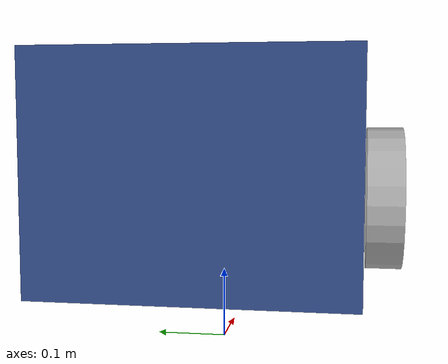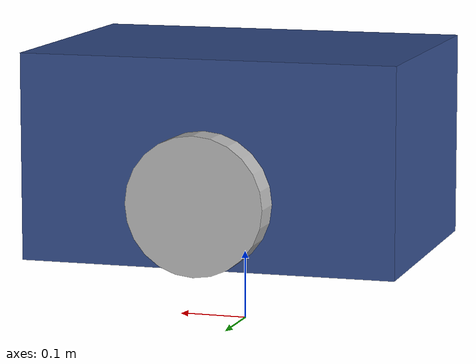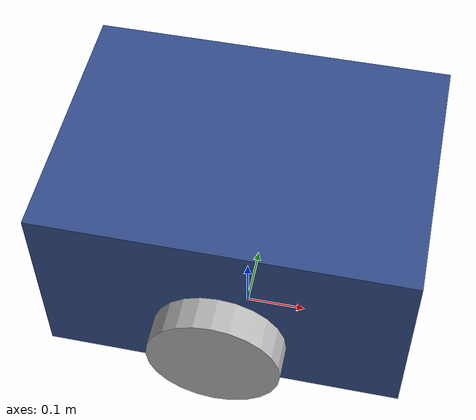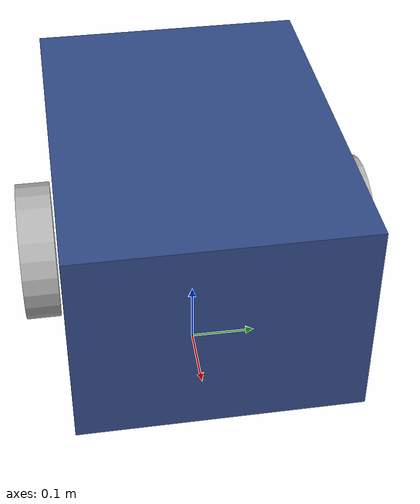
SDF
<?xml version="1.0"?>
<sdf version="1.9">
  <model name="mini_dogu">

    <pose>0 0 0.11 0 0 0</pose>

    <link name="base_link">
      <inertial>
        <mass>20.0</mass>
        <inertia>
          <ixx>0.416</ixx>
          <iyy>0.654</iyy>
          <izz>0.802</izz>
          <ixy>0.0</ixy>
          <ixz>0.0</ixz>
          <iyz>0.0</iyz>
        </inertia>
      </inertial>

      <collision name="base_collision">
        <pose>0 0 0.15 0 0 0</pose>
        <geometry>
          <box>
            <size>0.55 0.40 0.30</size>
          </box>
        </geometry>
      </collision>

      <visual name="base_visual">
        <pose>0 0 0.15 0 0 0</pose>
        <geometry>
          <box>
            <size>0.55 0.40 0.30</size>
          </box>
        </geometry>

        <material>
          <ambient>0.20 0.30 0.55 1.0</ambient>
          <diffuse>0.20 0.30 0.55 1.0</diffuse>
        </material>
      </visual>

      <sensor name="lidar" type="gpu_lidar">
        <pose>0.15 0 0.36 0 0 0</pose>

        <topic>/robot1/scan</topic>

        <update_rate>5</update_rate>
        <always_on>true</always_on>
        <visualize>false</visualize>

        <ray>
          <scan>
            <horizontal>
              <samples>180</samples>
              <resolution>1</resolution>
              <min_angle>-3.14159265</min_angle>
              <max_angle>3.14159265</max_angle>
            </horizontal>

            <vertical>
              <samples>1</samples>
              <resolution>1</resolution>
              <min_angle>0</min_angle>
              <max_angle>0</max_angle>
            </vertical>
          </scan>

          <range>
            <min>0.10</min>
            <max>15.0</max>
            <resolution>0.02</resolution>
          </range>
        </ray>
      </sensor>
    </link>

    <link name="left_wheel">
      <pose>0 0.23 0.10 1.570796 0 0</pose>

      <inertial>
        <mass>1.0</mass>
        <inertia>
          <ixx>0.005</ixx>
          <iyy>0.005</iyy>
          <izz>0.005</izz>
        </inertia>
      </inertial>

      <collision name="collision">
        <geometry>
          <cylinder>
            <radius>0.10</radius>
            <length>0.05</length>
          </cylinder>
        </geometry>
      </collision>

      <visual name="visual">
        <geometry>
          <cylinder>
            <radius>0.10</radius>
            <length>0.05</length>
          </cylinder>
        </geometry>
      </visual>
    </link>

    <link name="right_wheel">
      <pose>0 -0.23 0.10 1.570796 0 0</pose>

      <inertial>
        <mass>1.0</mass>
        <inertia>
          <ixx>0.005</ixx>
          <iyy>0.005</iyy>
          <izz>0.005</izz>
        </inertia>
      </inertial>

      <collision name="collision">
        <geometry>
          <cylinder>
            <radius>0.10</radius>
            <length>0.05</length>
          </cylinder>
        </geometry>
      </collision>

      <visual name="visual">
        <geometry>
          <cylinder>
            <radius>0.10</radius>
            <length>0.05</length>
          </cylinder>
        </geometry>
      </visual>
    </link>

    <joint name="left_wheel_joint" type="revolute">
      <parent>base_link</parent>
      <child>left_wheel</child>

      <axis>
        <xyz>0 1 0</xyz>
        <limit>
          <lower>-1.0e16</lower>
          <upper>1.0e16</upper>
          <effort>100</effort>
          <velocity>20</velocity>
        </limit>
      </axis>
    </joint>

    <joint name="right_wheel_joint" type="revolute">
      <parent>base_link</parent>
      <child>right_wheel</child>

      <axis>
        <xyz>0 1 0</xyz>
        <limit>
          <lower>-1.0e16</lower>
          <upper>1.0e16</upper>
          <effort>100</effort>
          <velocity>20</velocity>
        </limit>
      </axis>
    </joint>

    <plugin
      filename="gz-sim-diff-drive-system"
      name="gz::sim::systems::DiffDrive">

      <left_joint>left_wheel_joint</left_joint>
      <right_joint>right_wheel_joint</right_joint>

      <wheel_separation>0.46</wheel_separation>
      <wheel_radius>0.10</wheel_radius>

      <topic>/robot1/cmd_vel</topic>
      <odom_topic>/robot1/odom</odom_topic>
      <tf_topic>/robot1/tf</tf_topic>

      <frame_id>robot1/odom</frame_id>
      <child_frame_id>robot1/base_link</child_frame_id>

      <odom_publish_frequency>30</odom_publish_frequency>

      <max_linear_velocity>1.0</max_linear_velocity>
      <max_angular_velocity>1.5</max_angular_velocity>
      <max_linear_acceleration>1.0</max_linear_acceleration>
      <max_angular_acceleration>2.0</max_angular_acceleration>
    </plugin>

  </model>
</sdf>
